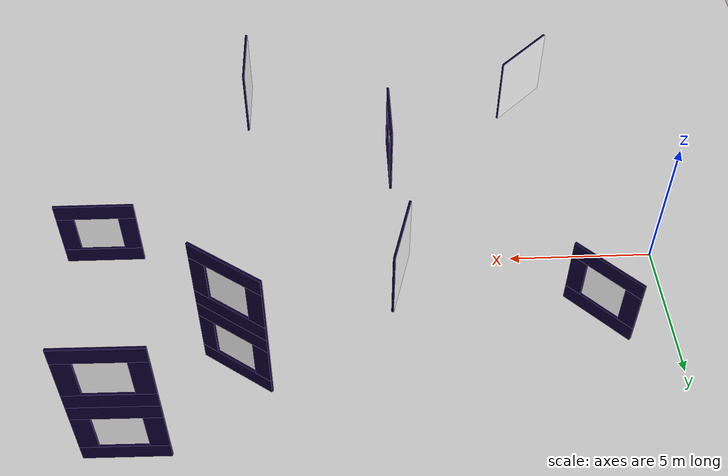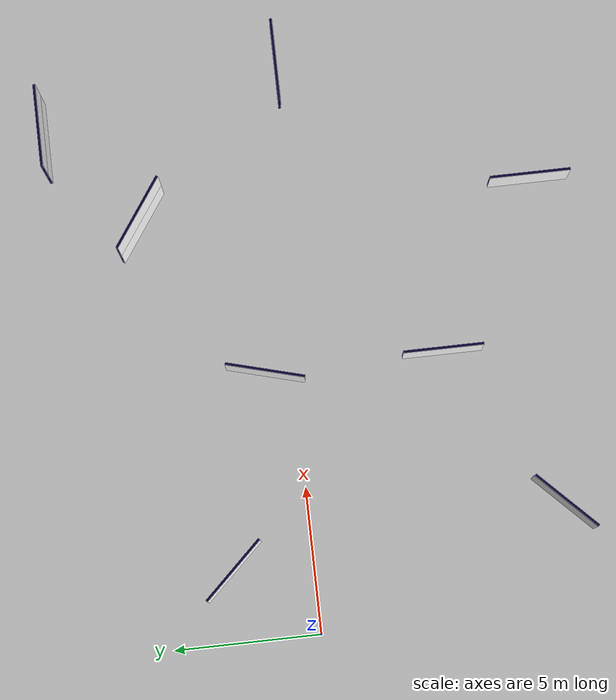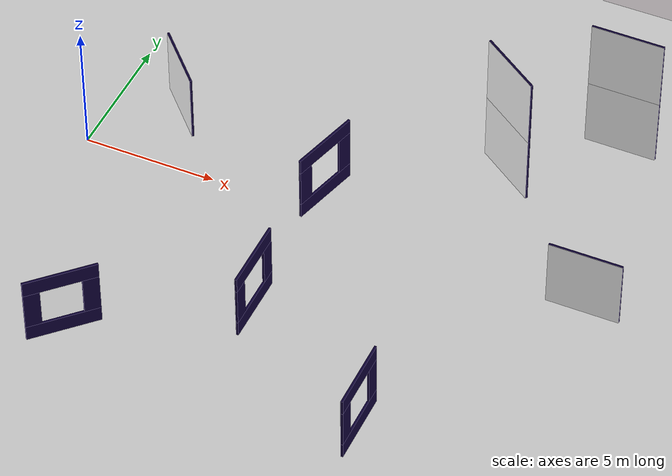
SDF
<sdf version="1.9">
 <world name="track_gates2_camera">
  <physics name="1ms" type="ignored">
   <max_step_size>0.001</max_step_size>
   <real_time_factor>1.0</real_time_factor>
  </physics>
  <plugin filename="gz-sim-physics-system" name="gz::sim::systems::Physics"/>
  <plugin filename="gz-sim-sensors-system" name="gz::sim::systems::Sensors">
   <render_engine>ogre2</render_engine>
  </plugin>
  <plugin filename="gz-sim-user-commands-system" name="gz::sim::systems::UserCommands"/>
  <plugin filename="gz-sim-scene-broadcaster-system" name="gz::sim::systems::SceneBroadcaster"/>
  <plugin filename="gz-sim-imu-system" name="gz::sim::systems::Imu"/>
  <plugin filename="gz-sim-navsat-system" name="gz::sim::systems::NavSat"/>
  <spherical_coordinates>
   <latitude_deg>-35.363262</latitude_deg>
   <longitude_deg>149.165237</longitude_deg>
   <elevation>584</elevation>
   <heading_deg>0</heading_deg>
   <surface_model>EARTH_WGS84</surface_model>
  </spherical_coordinates>
  <scene><ambient>1.0 1.0 1.0</ambient><background>0.8 0.8 0.8</background><grid>true</grid></scene>
  <light type="directional" name="sun">
   <pose>0 0 10 0 0 0</pose>
   <diffuse>0.8 0.8 0.8 1</diffuse>
   <specular>0.8 0.8 0.8 1</specular>
   <attenuation>
    <range>1000</range>
    <constant>0.9</constant>
    <linear>0.01</linear>
    <quadratic>0.001</quadratic>
   </attenuation>
   <direction>-0.5 0.1 -0.9</direction>
  </light>
  <model name="ground_plane">
   <static>true</static>
   <link name="link">
    <collision name="collision">
     <geometry><plane><normal>0 0 1</normal><size>100 100</size></plane></geometry>
    </collision>
    <visual name="visual">
     <geometry><plane><normal>0 0 1</normal><size>100 100</size></plane></geometry>
     <material>
      <ambient>0.8 0.8 0.8 1</ambient>
      <diffuse>0.8 0.8 0.8 1</diffuse>
      <specular>0.8 0.8 0.8 1</specular>
     </material>
    </visual>
   </link>
  </model>
  <include>
   <uri>model://gate</uri>
   <name>gate1</name>
   <pose>2.44 2.71 0 0 0 2.332112</pose>
   <static>true</static>
  </include>
  <include>
   <uri>model://gate</uri>
   <name>gate2</name>
   <pose>8.95 0.9299 0 0 0 1.3077788817244544</pose>
   <static>true</static>
  </include>
  <include>
   <uri>model://double_gate</uri>
   <name>gate3</name>
   <pose>14.3799 4.5299 0 0 0 2.5275894959432916</pose>
   <static>true</static>
  </include>
  <include>
   <uri>model://double_gate</uri>
   <name>gate4</name>
   <pose>17.58 7.4599 0 0 0 3.1340914110113207</pose>
   <static>true</static>
  </include>
  <include>
   <uri>model://gate</uri>
   <name>gate5</name>
   <pose>19.3 -0.5199 0 0 0 3.1415963267948968</pose>
   <static>true</static>
  </include>
  <include>
   <uri>model://gate</uri>
   <name>gate6</name>
   <pose>14.54 -8.59 0 0 0 1.5708</pose>
   <static>true</static>
  </include>
  <include>
   <uri>model://gate</uri>
   <name>gate7</name>
   <pose>9.04 -5.07 0 0 0 1.5708</pose>
   <static>true</static>
  </include>
  <include>
   <uri>model://gate</uri>
   <name>gate8</name>
   <pose>3.54 -8.59 0 0 0 0.7854018366025517</pose>
   <static>true</static>
  </include>
 </world>
</sdf>

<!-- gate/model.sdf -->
<sdf version="1.9">
  <model name="gate">
    <static>true</static>
    <!-- Definición del primer panel lateral -->
    <link name="side_panel_left">
      <pose>1.05 0 1.35 0 0 0</pose>
      <collision name="collision">
        <geometry>
          <box>
            <size>0.6 0.08 1.5</size>
          </box>
        </geometry>
      </collision>
      <visual name="visual">
        <geometry>
          <box>
            <size>0.6 0.08 1.5</size>
          </box>
        </geometry>
        <material>
          <ambient>0.05 0 0.2 1</ambient>
          <diffuse>0.05 0 0.2 1</diffuse>

        </material>
      </visual>
    </link>
    <!-- Definición del segundo panel lateral -->
    <link name="side_panel_right">
      <pose>-1.05 0 1.35 0 0 0</pose>
      <collision name="collision">
        <geometry>
          <box>
            <size>0.6 0.08 1.5</size>
          </box>
        </geometry>
      </collision>
      <visual name="visual">
        <geometry>
          <box>
            <size>0.6 0.08 1.5</size>
          </box>
        </geometry>
        <material>
          <ambient>0.05 0 0.2 1</ambient>
          <diffuse>0.05 0 0.2 1</diffuse>
        </material>
      </visual>
    </link>
    <!-- Definición de la barra superior -->
    <link name="top_bar">
      <pose>0 0 2.4 0 0 0</pose>
      <collision name="collision">
        <geometry>
          <box>
            <size>2.7 0.08 0.6</size>
          </box>
        </geometry>
      </collision>
      <visual name="visual">
        <geometry>
          <box>
            <size>2.7 0.08 0.6</size>
          </box>
        </geometry>
        <material>
          <ambient>0.05 0 0.2 1</ambient>
          <diffuse>0.05 0 0.2 1</diffuse>
        </material>
      </visual>
    </link>
    <!-- Definición de la barra inferior -->
    <link name="bottom_bar">
      <pose>0 0 0.3 0 0 0</pose>
      <collision name="collision">
        <geometry>
          <box>
            <size>2.7 0.08 0.6</size>
          </box>
        </geometry>
      </collision>
      <visual name="visual">
        <geometry>
          <box>
            <size>2.7 0.08 0.6</size>
          </box>
        </geometry>
        <material>
          <ambient>0.05 0 0.2 1</ambient>
          <diffuse>0.05 0 0.2 1</diffuse>
        </material>
      </visual>
    </link>
    <link name="gate_banner">
      <!-- Ajusta pose para que "tapice" el frente del gate -->
      <pose>0 0.05 1.35 1.5708 0 3.1416 </pose>
      <visual name="banner_visual">
        <cast_shadows>false</cast_shadows>
        <geometry>
          <plane>
            <normal>0 0 1</normal>
            <size>2.7 2.7</size> <!-- Ajustar a tu gusto -->
          </plane>
        </geometry>
        <material>
          <ambient>1 1 1 1</ambient>
          <diffuse>1 1 1 1</diffuse>
          <pbr>
            <metal>
              <albedo_map>textures/Gate_design.png</albedo_map>
              <roughness>0.6</roughness>
              <metalness>0</metalness>
            </metal>
          </pbr>
        </material>
      </visual>
      <!-- Sin collision para que sea "solo visual" -->
    </link>
  </model>
</sdf>

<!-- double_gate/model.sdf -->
<sdf version="1.9">
  <model name="gate">
    <static>true</static>
    <!-- Definición del primer panel lateral -->
    <link name="side_panel_left_bottom">
      <pose>1.05 0 1.35 0 0 0</pose>
      <collision name="collision">
        <geometry>
          <box>
            <size>0.6 0.08 1.5</size>
          </box>
        </geometry>
      </collision>
      <visual name="visual">
        <geometry>
          <box>
            <size>0.6 0.08 1.5</size>
          </box>
        </geometry>
        <material>
          <ambient>0.05 0 0.2 1</ambient>
          <diffuse>0.05 0 0.2 1</diffuse>

        </material>
      </visual>
    </link>
    <!-- Definición del segundo panel lateral -->
    <link name="side_panel_right_bottom">
      <pose>-1.05 0 1.35 0 0 0</pose>
      <collision name="collision">
        <geometry>
          <box>
            <size>0.6 0.08 1.5</size>
          </box>
        </geometry>
      </collision>
      <visual name="visual">
        <geometry>
          <box>
            <size>0.6 0.08 1.5</size>
          </box>
        </geometry>
        <material>
          <ambient>0.05 0 0.2 1</ambient>
          <diffuse>0.05 0 0.2 1</diffuse>
        </material>
      </visual>
    </link>
    <!-- Definición de la barra superior -->
    <link name="top_bar_bottom">
      <pose>0 0 2.4 0 0 0</pose>
      <collision name="collision">
        <geometry>
          <box>
            <size>2.7 0.08 0.6</size>
          </box>
        </geometry>
      </collision>
      <visual name="visual">
        <geometry>
          <box>
            <size>2.7 0.08 0.6</size>
          </box>
        </geometry>
        <material>
          <ambient>0.05 0 0.2 1</ambient>
          <diffuse>0.05 0 0.2 1</diffuse>
        </material>
      </visual>
    </link>
    <!-- Definición de la barra inferior -->
    <link name="bottom_bar_bottom">
      <pose>0 0 0.3 0 0 0</pose>
      <collision name="collision">
        <geometry>
          <box>
            <size>2.7 0.08 0.6</size>
          </box>
        </geometry>
      </collision>
      <visual name="visual">
        <geometry>
          <box>
            <size>2.7 0.08 0.6</size>
          </box>
        </geometry>
        <material>
          <ambient>0.05 0 0.2 1</ambient>
          <diffuse>0.05 0 0.2 1</diffuse>
        </material>
      </visual>
    </link>
    <link name="gate_banner_bottom">
      <!-- Ajusta pose para que "tapice" el frente del gate -->
      <pose>0 0.05 1.35 1.5708 0 3.1416 </pose>
      <visual name="banner_visual">
        <cast_shadows>false</cast_shadows>
        <geometry>
          <plane>
            <normal>0 0 1</normal>
            <size>2.7 2.7</size> <!-- Ajustar a tu gusto -->
          </plane>
        </geometry>
        <material>
          <ambient>1 1 1 1</ambient>
          <diffuse>1 1 1 1</diffuse>
          <pbr>
            <metal>
              <albedo_map>textures/Gate_design.png</albedo_map>
              <roughness>0.6</roughness>
              <metalness>0</metalness>
            </metal>
          </pbr>
        </material>
      </visual>
      <!-- Sin collision para que sea "solo visual" -->
    </link>
    <link name="side_panel_left_top">
      <pose>1.05 0 4.05 0 0 0</pose>
      <collision name="collision">
        <geometry>
          <box>
            <size>0.6 0.08 1.5</size>
          </box>
        </geometry>
      </collision>
      <visual name="visual">
        <geometry>
          <box>
            <size>0.6 0.08 1.5</size>
          </box>
        </geometry>
        <material>
          <ambient>0.05 0 0.2 1</ambient>
          <diffuse>0.05 0 0.2 1</diffuse>

        </material>
      </visual>
    </link>
    <!-- Definición del segundo panel lateral -->
    <link name="side_panel_right_top">
      <pose>-1.05 0 4.05 0 0 0</pose>
      <collision name="collision">
        <geometry>
          <box>
            <size>0.6 0.08 1.5</size>
          </box>
        </geometry>
      </collision>
      <visual name="visual">
        <geometry>
          <box>
            <size>0.6 0.08 1.5</size>
          </box>
        </geometry>
        <material>
          <ambient>0.05 0 0.2 1</ambient>
          <diffuse>0.05 0 0.2 1</diffuse>
        </material>
      </visual>
    </link>
    <!-- Definición de la barra superior -->
    <link name="top_bar_top">
      <pose>0 0 5.1 0 0 0</pose>
      <collision name="collision">
        <geometry>
          <box>
            <size>2.7 0.08 0.6</size>
          </box>
        </geometry>
      </collision>
      <visual name="visual">
        <geometry>
          <box>
            <size>2.7 0.08 0.6</size>
          </box>
        </geometry>
        <material>
          <ambient>0.05 0 0.2 1</ambient>
          <diffuse>0.05 0 0.2 1</diffuse>
        </material>
      </visual>
    </link>
    <!-- Definición de la barra inferior -->
    <link name="bottom_bar_top">
      <pose>0 0 3 0 0 0</pose>
      <collision name="collision">
        <geometry>
          <box>
            <size>2.7 0.08 0.6</size>
          </box>
        </geometry>
      </collision>
      <visual name="visual">
        <geometry>
          <box>
            <size>2.7 0.08 0.6</size>
          </box>
        </geometry>
        <material>
          <ambient>0.05 0 0.2 1</ambient>
          <diffuse>0.05 0 0.2 1</diffuse>
        </material>
      </visual>
    </link>
    <link name="gate_banner_top">
      <!-- Ajusta pose para que "tapice" el frente del gate -->
      <pose>0 0.05 4.05 1.5708 0 3.1416 </pose>
      <visual name="banner_visual">
        <cast_shadows>false</cast_shadows>
        <geometry>
          <plane>
            <normal>0 0 1</normal>
            <size>2.7 2.7</size> <!-- Ajustar a tu gusto -->
          </plane>
        </geometry>
        <material>
          <ambient>1 1 1 1</ambient>
          <diffuse>1 1 1 1</diffuse>
          <pbr>
            <metal>
              <albedo_map>textures/Gate_design.png</albedo_map>
              <roughness>0.6</roughness>
              <metalness>0</metalness>
            </metal>
          </pbr>
        </material>
      </visual>
      <!-- Sin collision para que sea "solo visual" -->
    </link>
  </model>
</sdf>
